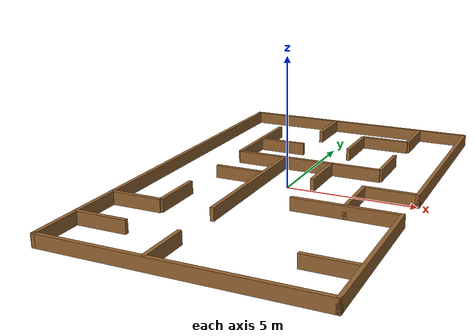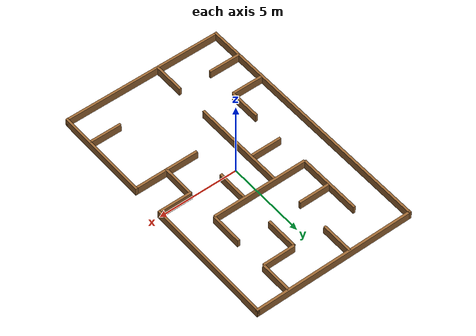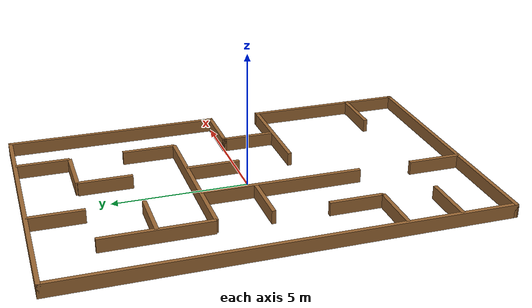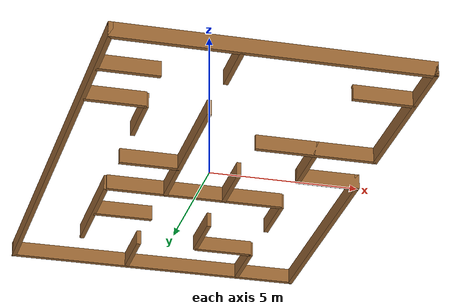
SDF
<?xml version="1.0"?>
<sdf version="1.6">
  <model name="simple_room">
    <static>true</static>
    <pose>0 0 0 0 0 0</pose>

    <link name="wall_north">
      <pose>0 8 0.25 0 0 0</pose>
      <collision name="col"><geometry><box><size>10.15 0.15 0.5</size></box></geometry></collision>
      <visual name="vis"><geometry><box><size>10.15 0.15 0.5</size></box></geometry><material><ambient>0.6 0.4 0.2 1</ambient><diffuse>0.6 0.4 0.2 1</diffuse></material></visual>
    </link>

    <link name="wall_south">
      <pose>0 -8 0.25 0 0 0</pose>
      <collision name="col"><geometry><box><size>10.15 0.15 0.5</size></box></geometry></collision>
      <visual name="vis"><geometry><box><size>10.15 0.15 0.5</size></box></geometry><material><ambient>0.6 0.4 0.2 1</ambient><diffuse>0.6 0.4 0.2 1</diffuse></material></visual>
    </link>

    <link name="wall_west">
      <pose>-5 0 0.25 0 0 0</pose>
      <collision name="col"><geometry><box><size>0.15 16.15 0.5</size></box></geometry></collision>
      <visual name="vis"><geometry><box><size>0.15 16.15 0.5</size></box></geometry><material><ambient>0.6 0.4 0.2 1</ambient><diffuse>0.6 0.4 0.2 1</diffuse></material></visual>
    </link>

    <link name="wall_east_top">
      <pose>5 4 0.25 0 0 0</pose>
      <collision name="col"><geometry><box><size>0.15 8.15 0.5</size></box></geometry></collision>
      <visual name="vis"><geometry><box><size>0.15 8.15 0.5</size></box></geometry><material><ambient>0.6 0.4 0.2 1</ambient><diffuse>0.6 0.4 0.2 1</diffuse></material></visual>
    </link>
    <link name="wall_east_indent_top">
      <pose>4 0 0.25 0 0 0</pose>
      <collision name="col"><geometry><box><size>2.15 0.15 0.5</size></box></geometry></collision>
      <visual name="vis"><geometry><box><size>2.15 0.15 0.5</size></box></geometry><material><ambient>0.6 0.4 0.2 1</ambient><diffuse>0.6 0.4 0.2 1</diffuse></material></visual>
    </link>
    <link name="wall_east_indent_back">
      <pose>3 -1 0.25 0 0 0</pose>
      <collision name="col"><geometry><box><size>0.15 2.15 0.5</size></box></geometry></collision>
      <visual name="vis"><geometry><box><size>0.15 2.15 0.5</size></box></geometry><material><ambient>0.6 0.4 0.2 1</ambient><diffuse>0.6 0.4 0.2 1</diffuse></material></visual>
    </link>
    <link name="wall_east_bottom">
      <pose>5 -5 0.25 0 0 0</pose>
      <collision name="col"><geometry><box><size>0.15 6.15 0.5</size></box></geometry></collision>
      <visual name="vis"><geometry><box><size>0.15 6.15 0.5</size></box></geometry><material><ambient>0.6 0.4 0.2 1</ambient><diffuse>0.6 0.4 0.2 1</diffuse></material></visual>
    </link>

    <link name="inner_v1">
      <pose>-3 4 0.25 0 0 0</pose>
      <collision name="col"><geometry><box><size>0.15 4 0.5</size></box></geometry></collision>
      <visual name="vis"><geometry><box><size>0.15 4 0.5</size></box></geometry><material><ambient>0.6 0.4 0.2 1</ambient><diffuse>0.6 0.4 0.2 1</diffuse></material></visual>
    </link>
    <link name="inner_v2">
      <pose>-3 -3 0.25 0 0 0</pose>
      <collision name="col"><geometry><box><size>0.15 2 0.5</size></box></geometry></collision>
      <visual name="vis"><geometry><box><size>0.15 2 0.5</size></box></geometry><material><ambient>0.6 0.4 0.2 1</ambient><diffuse>0.6 0.4 0.2 1</diffuse></material></visual>
    </link>
    <link name="inner_v3">
      <pose>-1 7 0.25 0 0 0</pose>
      <collision name="col"><geometry><box><size>0.15 2 0.5</size></box></geometry></collision>
      <visual name="vis"><geometry><box><size>0.15 2 0.5</size></box></geometry><material><ambient>0.6 0.4 0.2 1</ambient><diffuse>0.6 0.4 0.2 1</diffuse></material></visual>
    </link>
    <link name="inner_v4">
      <pose>-1 -1 0.25 0 0 0</pose>
      <collision name="col"><geometry><box><size>0.15 6 0.5</size></box></geometry></collision>
      <visual name="vis"><geometry><box><size>0.15 6 0.5</size></box></geometry><material><ambient>0.6 0.4 0.2 1</ambient><diffuse>0.6 0.4 0.2 1</diffuse></material></visual>
    </link>
    <link name="inner_v5">
      <pose>1 5 0.25 0 0 0</pose>
      <collision name="col"><geometry><box><size>0.15 2 0.5</size></box></geometry></collision>
      <visual name="vis"><geometry><box><size>0.15 2 0.5</size></box></geometry><material><ambient>0.6 0.4 0.2 1</ambient><diffuse>0.6 0.4 0.2 1</diffuse></material></visual>
    </link>
    <link name="inner_v6">
      <pose>1 1 0.25 0 0 0</pose>
      <collision name="col"><geometry><box><size>0.15 2 0.5</size></box></geometry></collision>
      <visual name="vis"><geometry><box><size>0.15 2 0.5</size></box></geometry><material><ambient>0.6 0.4 0.2 1</ambient><diffuse>0.6 0.4 0.2 1</diffuse></material></visual>
    </link>
    <link name="inner_v8">
      <pose>3 7 0.25 0 0 0</pose>
      <collision name="col"><geometry><box><size>0.15 2 0.5</size></box></geometry></collision>
      <visual name="vis"><geometry><box><size>0.15 2 0.5</size></box></geometry><material><ambient>0.6 0.4 0.2 1</ambient><diffuse>0.6 0.4 0.2 1</diffuse></material></visual>
    </link>
    <link name="inner_v9">
      <pose>3 3 0.25 0 0 0</pose>
      <collision name="col"><geometry><box><size>0.15 2 0.5</size></box></geometry></collision>
      <visual name="vis"><geometry><box><size>0.15 2 0.5</size></box></geometry><material><ambient>0.6 0.4 0.2 1</ambient><diffuse>0.6 0.4 0.2 1</diffuse></material></visual>
    </link>
    <link name="inner_v10">
      <pose>-1 -7 0.25 0 0 0</pose>
      <collision name="col"><geometry><box><size>0.15 2 0.5</size></box></geometry></collision>
      <visual name="vis"><geometry><box><size>0.15 2 0.5</size></box></geometry><material><ambient>0.6 0.4 0.2 1</ambient><diffuse>0.6 0.4 0.2 1</diffuse></material></visual>
    </link>

    <link name="inner_h1">
      <pose>2 6 0.25 0 0 0</pose>
      <collision name="col"><geometry><box><size>2 0.15 0.5</size></box></geometry></collision>
      <visual name="vis"><geometry><box><size>2 0.15 0.5</size></box></geometry><material><ambient>0.6 0.4 0.2 1</ambient><diffuse>0.6 0.4 0.2 1</diffuse></material></visual>
    </link>
    <link name="inner_h2">
      <pose>-2 4 0.25 0 0 0</pose>
      <collision name="col"><geometry><box><size>2 0.15 0.5</size></box></geometry></collision>
      <visual name="vis"><geometry><box><size>2 0.15 0.5</size></box></geometry><material><ambient>0.6 0.4 0.2 1</ambient><diffuse>0.6 0.4 0.2 1</diffuse></material></visual>
    </link>
    <link name="inner_h4">
      <pose>0 2 0.25 0 0 0</pose>
      <collision name="col"><geometry><box><size>6 0.15 0.5</size></box></geometry></collision>
      <visual name="vis"><geometry><box><size>6 0.15 0.5</size></box></geometry><material><ambient>0.6 0.4 0.2 1</ambient><diffuse>0.6 0.4 0.2 1</diffuse></material></visual>
    </link>
    <link name="inner_h5">
      <pose>-2 0 0.25 0 0 0</pose>
      <collision name="col"><geometry><box><size>2 0.15 0.5</size></box></geometry></collision>
      <visual name="vis"><geometry><box><size>2 0.15 0.5</size></box></geometry><material><ambient>0.6 0.4 0.2 1</ambient><diffuse>0.6 0.4 0.2 1</diffuse></material></visual>
    </link>
    <link name="inner_h6">
      <pose>3 -2 0.25 0 0 0</pose>
      <collision name="col"><geometry><box><size>4 0.15 0.5</size></box></geometry></collision>
      <visual name="vis"><geometry><box><size>4 0.15 0.5</size></box></geometry><material><ambient>0.6 0.4 0.2 1</ambient><diffuse>0.6 0.4 0.2 1</diffuse></material></visual>
    </link>
    <link name="inner_h7">
      <pose>-4 -4 0.25 0 0 0</pose>
      <collision name="col"><geometry><box><size>2 0.15 0.5</size></box></geometry></collision>
      <visual name="vis"><geometry><box><size>2 0.15 0.5</size></box></geometry><material><ambient>0.6 0.4 0.2 1</ambient><diffuse>0.6 0.4 0.2 1</diffuse></material></visual>
    </link>
    <link name="inner_h8">
      <pose>-4 -6 0.25 0 0 0</pose>
      <collision name="col"><geometry><box><size>2 0.15 0.5</size></box></geometry></collision>
      <visual name="vis"><geometry><box><size>2 0.15 0.5</size></box></geometry><material><ambient>0.6 0.4 0.2 1</ambient><diffuse>0.6 0.4 0.2 1</diffuse></material></visual>
    </link>
    <link name="inner_h9">
      <pose>4 -6 0.25 0 0 0</pose>
      <collision name="col"><geometry><box><size>2 0.15 0.5</size></box></geometry></collision>
      <visual name="vis"><geometry><box><size>2 0.15 0.5</size></box></geometry><material><ambient>0.6 0.4 0.2 1</ambient><diffuse>0.6 0.4 0.2 1</diffuse></material></visual>
    </link>

  </model>
</sdf>
